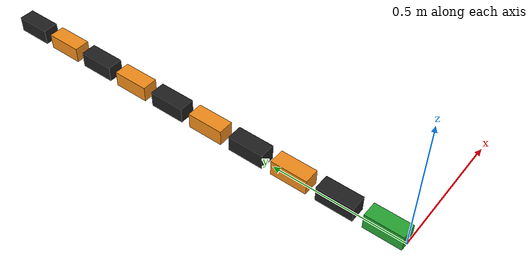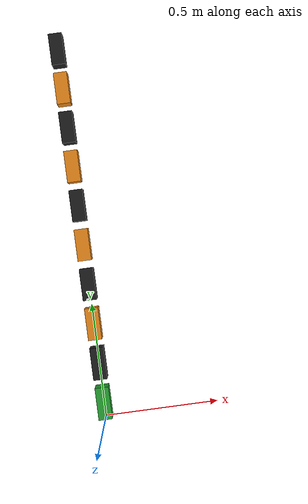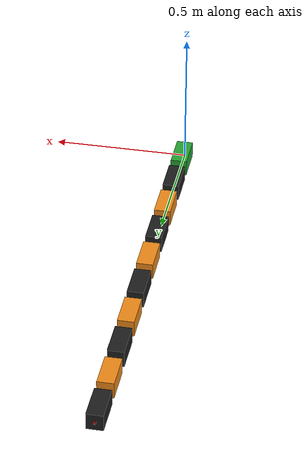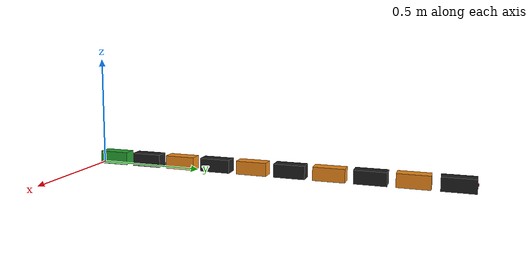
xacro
<?xml version="1.0"?>
<robot xmlns:xacro="http://www.ros.org/wiki/xacro" name="snakebot">

  <xacro:include filename="inertial_macros.xacro"/>
    <xacro:include filename="materials.xacro"/>
   <xacro:include filename="ros2_control.xacro" />
   <xacro:include filename="camera.xacro" />

   <!-- Constants for robot dimensions -->
    <xacro:property name="PI" value="3.1415926535897931"/>

    <link name="base_link"></link>

    <joint name="base_joint" type="fixed">
      <parent link="base_link"/>
      <child link="link_1"/>
      <origin xyz="0.0 0 0.0" rpy="0 0 0"/>
    </joint>

    <!--LINK_1 -->
    <link name="link_1">
        <visual>
            <origin xyz="0.0 0.07 0.03" rpy="0.0 0.0 0"/>
            <geometry>
                <box size="0.06 0.14 0.06"/>
            </geometry>
            <material name="green"/>
        </visual>
        <collision name="link_1_collision">
            <origin xyz="0.0 0.07 0.03" rpy="0.0 0.0 0"/>
            <geometry>
                <box size="0.06 0.14 0.06"/>
            </geometry>
        </collision>
        <xacro:inertial_box mass="1" x="0.06" y="0.14" z="0.06">
            <origin xyz="0.0 0.07 0.03" rpy="0.0 0.0 0"/>
        </xacro:inertial_box>
    </link>

    <!-- JOINT BETWEEN THE TAIL AND THE  LINK_2 -->

    <joint name="link_1_2_joint" type="revolute">
        <parent link="link_1"/>
        <child link="link_2"/>
        <limit lower="-0.785398163397" upper="0.785398163397" velocity="50.0" effort="1000.0"/>
        <origin xyz="0.0 0.175 0.0" rpy="0 0 0"/>
        <axis xyz="0 0 1"/>
        <joint_properties damping="6.0" friction="6.0"/>

    </joint>

    <!-- LINK 2 -->

    <link name="link_2">
        <visual>
            <material name="black"/>
            <origin xyz="0.0 0.07 0.03" rpy="0.0 0.0 0.0"/>
             <geometry>
                <box size="0.06 0.14 0.06"/>
            </geometry>
        </visual>
        <collision name="link_2_collision">
            <origin xyz="0.0 0.07 0.03" rpy="0.0 0.0 0.0"/>
            <geometry>
                <box size="0.06 0.14 0.06"/>
            </geometry>
        </collision>
        <xacro:inertial_box mass="1" x="0.06" y="0.14" z="0.06">
            <origin xyz="0.0 0.07 0.03" rpy="0.0 0.0 0.0"/>
        </xacro:inertial_box>
    </link>

    <!-- JOINT BETWEEM LINK 2 AND 3 -->

    <joint name="link_2_3_joint" type="revolute">
        <parent link="link_2"/>
        <child link="link_3"/>
        <limit lower="-0.785398163397" upper="0.785398163397" velocity="50.0" effort="1000.0"/>
        <origin xyz="0.0 0.175 0.0" rpy="0 0 0"/>
        <axis xyz="0 0 1"/>
        <joint_properties damping="6.0" friction="6.0"/>
    </joint>

    <!-- LINK 3 -->

    <link name="link_3">
        <visual>
            <material name="orange"/>
            <origin xyz="0.0 0.07 0.03" rpy="0.0 0.0 0.0"/>
            <geometry>
                <box size="0.06 0.14 0.06"/>
            </geometry>
        </visual>
        <collision name="link_3_collision">
            <origin xyz="0.0 0.07 0.03" rpy="0.0 0.0 0.0"/>
            <geometry>
                <box size="0.06 0.14 0.06"/>
            </geometry>
        </collision>
        <xacro:inertial_box mass="1" x="0.06" y="0.14" z="0.06">
            <origin xyz="0.0 0.07 0.03" rpy="0.0 0.0 0.0"/>
        </xacro:inertial_box>
    </link>

    <!--JOINT BETWEEN LINK 3 AND LINK 4 -->

    <joint name="link_3_4_joint" type="revolute">
        <parent link="link_3"/>
        <child link="link_4"/>
        <limit lower="-0.785398163397" upper="0.785398163397" velocity="50.0" effort="1000.0"/>
        <origin xyz="0.0 0.175 0.0" rpy="0 0 0"/>
        <axis xyz="0 0 1"/>
        <joint_properties damping="6.0" friction="6.0"/>
    </joint>

    <!-- LINK 4 -->

    <link name="link_4">
        <visual>
            <material name="black"/>
            <origin xyz="0.0 0.07 0.03" rpy="0.0 0.0 0.0"/>
            <geometry>
                <box size="0.06 0.14 0.06"/>
            </geometry>
        </visual>
        <collision name="link_4_collision">
            <origin xyz="0.0 0.07 0.03" rpy="0.0 0.0 0.0"/>
            <geometry>
                <box size="0.06 0.14 0.06"/>
            </geometry>
        </collision>
        <xacro:inertial_box mass="1" x="0.06" y="0.14" z="0.06">
            <origin xyz="0.0 0.07 0.03" rpy="0.0 0.0 0.0"/>
        </xacro:inertial_box>
    </link>

    <joint name="link_4_5_joint" type="revolute">
        <parent link="link_4"/>
        <child link="link_5"/>
        <limit lower="-0.785398163397" upper="0.785398163397" velocity="50.0" effort="1000.0"/>
        <origin xyz="0.0 0.175 0.0" rpy="0 0 0"/>
        <axis xyz="0 0 1"/>
        <joint_properties damping="6.0" friction="6.0"/>
    </joint>

    <!-- LINK 5-->

    <link name="link_5">
        <visual>
            <material name="orange"/>
            <origin xyz="0.0 0.07 0.03" rpy="0.0 0.0 0.0"/>
            <geometry>
                <box size="0.06 0.14 0.06"/>
            </geometry>
        </visual>
        <collision name="link_5_collision">
            <origin xyz="0.0 0.07 0.03" rpy="0.0 0.0 0.0"/>
            <geometry>
                <box size="0.06 0.14 0.06"/>
            </geometry>
        </collision>
        <xacro:inertial_box mass="1" x="0.06" y="0.14" z="0.06">
            <origin xyz="0.0 0.07 0.03" rpy="0.0 0.0 0.0"/>
        </xacro:inertial_box>
    </link>

    <joint name="link_5_6_joint" type="revolute">
        <parent link="link_5"/>
        <child link="link_6"/>
        <limit lower="-0.785398163397" upper="0.785398163397" velocity="50.0" effort="1000.0"/>
        <origin xyz="0.0 0.175 0.0" rpy="0 0 0"/>
        <axis xyz="0 0 1"/>
        <joint_properties damping="6.0" friction="6.0"/>
    </joint>

    <!--  LINK 6-->

    <link name="link_6">
        <visual>
            <material name="black"/>
            <origin xyz="0.0 0.07 0.03" rpy="0.0 0.0 0.0"/>
            <geometry>
                <box size="0.06 0.14 0.06"/>
            </geometry>
        </visual>
        <collision name="link_6_collision">
            <origin xyz="0.0 0.07 0.03" rpy="0.0 0.0 0.0"/>
            <geometry>
                <box size="0.06 0.14 0.06"/>
            </geometry>
        </collision>
        <xacro:inertial_box mass="1" x="0.06" y="0.14" z="0.06">
            <origin xyz="0.0 0.07 0.03" rpy="0.0 0.0 0.0"/>
        </xacro:inertial_box>
    </link>

    <!-- JOINT BETWEEN LINK 6 AND LINK 7 -->

    <joint name="link_6_7_joint" type="revolute">
        <parent link="link_6"/>
        <child link="link_7"/>
        <limit lower="-0.785398163397" upper="0.785398163397" velocity="50.0" effort="1000.0"/>
        <origin xyz="0.0 0.175 0.0" rpy="0 0 0"/>
        <axis xyz="0 0 1"/>
        <joint_properties damping="6.0" friction="6.0"/>
    </joint>

    <!--  LINK 7-->

    <link name="link_7">
        <visual>
            <material name="orange"/>
            <origin xyz="0.0 0.07 0.03" rpy="0.0 0.0 0.0"/>
            <geometry>
                <box size="0.06 0.14 0.06"/>
            </geometry>
        </visual>
        <collision name="link_7_collision">
            <origin xyz="0.0 0.07 0.03" rpy="0.0 0.0 0.0"/>
            <geometry>
                <box size="0.06 0.14 0.06"/>
            </geometry>
        </collision>
        <xacro:inertial_box mass="1" x="0.06" y="0.14" z="0.06">
            <origin xyz="0.0 0.07 0.03" rpy="0.0 0.0 0.0"/>
        </xacro:inertial_box>
    </link>

    <!-- JOINT BETWEEN LINK 7 AND LINK 8 -->

    <joint name="link_7_8_joint" type="revolute">
        <parent link="link_7"/>
        <child link="link_8"/>
        <limit lower="-0.785398163397" upper="0.785398163397" velocity="50.0" effort="1000.0"/>
        <origin xyz="0.0 0.175 0.0" rpy="0 0 0"/>
        <axis xyz="0 0 1"/>
        <joint_properties damping="6.0" friction="6.0"/>
    </joint>

    <!--  LINK 8-->

    <link name="link_8">
        <visual>
            <material name="black"/>
            <origin xyz="0.0 0.07 0.03" rpy="0.0 0.0 0.0"/>
            <geometry>
                <box size="0.06 0.14 0.06"/>
            </geometry>
        </visual>
        <collision name="link_8_collision">
            <origin xyz="0.0 0.07 0.03" rpy="0.0 0.0 0.0"/>
            <geometry>
                <box size="0.06 0.14 0.06"/>
            </geometry>
        </collision>
        <xacro:inertial_box mass="1" x="0.06" y="0.14" z="0.06">
            <origin xyz="0.0 0.07 0.03" rpy="0.0 0.0 0.0"/>
        </xacro:inertial_box>
    </link>

    <!-- JOINT BETWEEN LINK 8 AND LINK 9 -->

    <joint name="link_8_9_joint" type="revolute">
        <parent link="link_8"/>
        <child link="link_9"/>
        <limit lower="-0.785398163397" upper="0.785398163397" velocity="50.0" effort="1000.0"/>
        <origin xyz="0.0 0.175 0.0" rpy="0 0 0"/>
        <axis xyz="0 0 1"/>
        <joint_properties damping="6.0" friction="6.0"/>
    </joint>

    <!--  LINK 9-->

    <link name="link_9">
        <visual>
            <material name="orange"/>
            <origin xyz="0.0 0.07 0.03" rpy="0.0 0.0 0.0"/>
            <geometry>
                <box size="0.06 0.14 0.06"/>
            </geometry>
        </visual>
        <collision name="link_9_collision">
            <origin xyz="0.0 0.07 0.03" rpy="0.0 0.0 0.0"/>
            <geometry>
                <box size="0.06 0.14 0.06"/>
            </geometry>
        </collision>
        <xacro:inertial_box mass="1" x="0.06" y="0.14" z="0.06">
            <origin xyz="0.0 0.07 0.03" rpy="0.0 0.0 0.0"/>
        </xacro:inertial_box>
    </link>

    <!-- JOINT BETWEEN LINK 9 AND LINK 10 -->

    <joint name="link_9_10_joint" type="revolute">
        <parent link="link_9"/>
        <child link="link_10"/>
        <limit lower="-0.785398163397" upper="0.785398163397" velocity="50.0" effort="1000.0"/>
        <origin xyz="0.0 0.175 0.0" rpy="0 0 0"/>
        <axis xyz="0 0 1"/>
        <joint_properties damping="6.0" friction="6.0"/>
    </joint>

    <!--  LINK 10-->

    <link name="link_10">
        <visual>
            <material name="black"/>
            <origin xyz="0.0 0.07 0.03" rpy="0.0 0.0 0.0"/>
            <geometry>
                <box size="0.06 0.14 0.06"/>
            </geometry>
        </visual>
        <collision name="link_10_collision">
            <origin xyz="0.0 0.07 0.03" rpy="0.0 0.0 0.0"/>
            <geometry>
                <box size="0.06 0.14 0.06"/>
            </geometry>
        </collision>
        <xacro:inertial_box mass="1" x="0.06" y="0.14" z="0.06">
            <origin xyz="0.0 0.07 0.03" rpy="0.0 0.0 0.0"/>
        </xacro:inertial_box>

    </link>

</robot>

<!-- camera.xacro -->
<robot xmlns:xacro="http://www.ros.org/wiki/xacro" >

    <joint name="camera_joint" type="fixed">
        <parent link="link_10"/>
        <child link="camera_link"/>
        <origin xyz="0 0.14 0.03" rpy="0 ${-pi/18} ${pi/2}"/>
    </joint>

    <link name="camera_link">
        <visual>
            <geometry>
                <box size="0.010 0.01 0.01"/>
            </geometry>
            <material name="red"/>
        </visual>
    </link>

    <joint name="camera_optical_joint" type="fixed">
        <parent link="camera_link"/>
        <child link="camera_link_optical"/>
        <origin xyz="0 0 0" rpy="${-pi/2} 0 ${-pi/2}"/>
    </joint>

    <link name="camera_link_optical"></link>

    <gazebo reference="camera_link">
        <material>Gazebo/Red</material>

        <sensor name="camera" type="camera">
            <pose> 0 0 0 0 0 0 </pose>
            <visualize>true</visualize>
            <update_rate>10</update_rate>
            <camera>
                <horizontal_fov>1.089</horizontal_fov>
                <image>
                    <format>R8G8B8</format>
                    <width>640</width>
                    <height>480</height>
                </image>
                <clip>
                    <near>0.05</near>
                    <far>8.0</far>
                </clip>
            </camera>
            <plugin name="camera_controller" filename="libgazebo_ros_camera.so">
                <frame_name>camera_link_optical</frame_name>
            </plugin>
        </sensor>
    </gazebo>

</robot>
